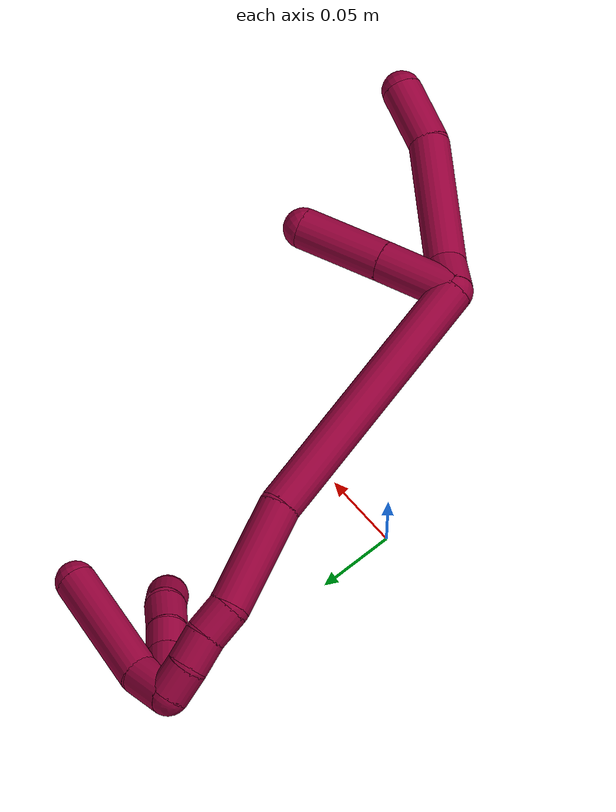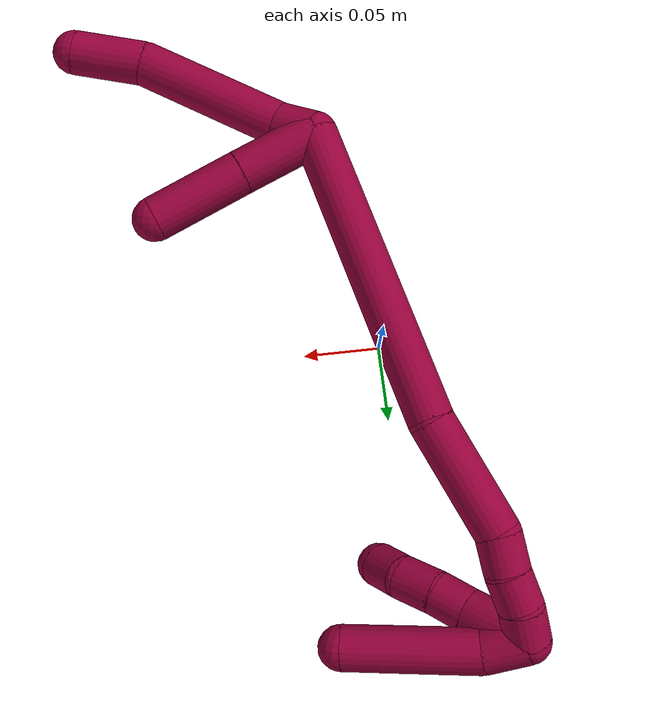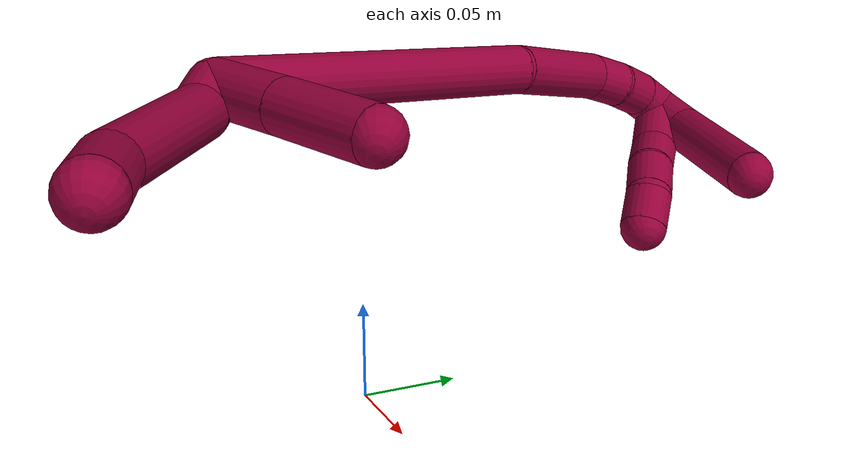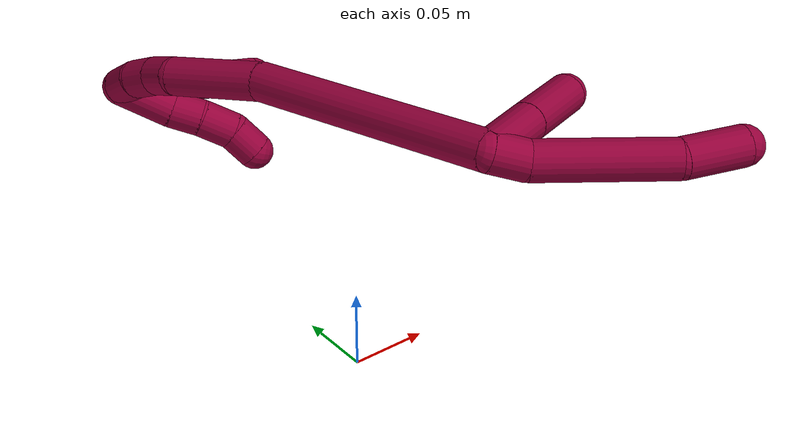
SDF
<sdf version="1.7">
 <world name="default">
  <model name="8">
   <static>0</static>
   <link name="8">
    <collision name="collision-cylinder-e_1_2_8">
     <pose>7.7e-05 -0.002053 0.011378 0.178471 0.0067 0.000599</pose>
     <geometry><cylinder><radius>0.0125</radius><length>0.023124</length></cylinder></geometry>
     <surface>
      <friction><ode><mu>1.16</mu><mu2>1.16</mu2><slip1>0</slip1><slip2>0</slip2></ode></friction>
      <contact><ode><kp>1e+06</kp><kd>1</kd><max_vel>0</max_vel><min_depth>0.001</min_depth></ode></contact>
     </surface>
    </collision>
    <visual name="visual-cylinder-e_1_2_8">
     <pose>7.7e-05 -0.002053 0.011378 0.178471 0.0067 0.000599</pose>
     <geometry><cylinder><radius>0.0125</radius><length>0.023124</length></cylinder></geometry>
     <material><ambient>0.584314 0 0.227451 1</ambient></material>
    </visual>
    <collision name="collision-cylinder-e_2_8_9">
     <pose>-0.010251 -0.017585 0.062359 0.328078 -0.243791 -0.040549</pose>
     <geometry><cylinder><radius>0.0125</radius><length>0.086216</length></cylinder></geometry>
     <surface>
      <friction><ode><mu>1.16</mu><mu2>1.16</mu2><slip1>0</slip1><slip2>0</slip2></ode></friction>
      <contact><ode><kp>1e+06</kp><kd>1</kd><max_vel>0</max_vel><min_depth>0.001</min_depth></ode></contact>
     </surface>
    </collision>
    <visual name="visual-cylinder-e_2_8_9">
     <pose>-0.010251 -0.017585 0.062359 0.328078 -0.243791 -0.040549</pose>
     <geometry><cylinder><radius>0.0125</radius><length>0.086216</length></cylinder></geometry>
     <material><ambient>0.584314 0 0.227451 1</ambient></material>
    </visual>
    <collision name="collision-cylinder-e_3_9_6">
     <pose>-0.028281 -0.031886 0.120789 0.043624 -0.384465 -0.008492</pose>
     <geometry><cylinder><radius>0.0125</radius><length>0.040659</length></cylinder></geometry>
     <surface>
      <friction><ode><mu>1.16</mu><mu2>1.16</mu2><slip1>0</slip1><slip2>0</slip2></ode></friction>
      <contact><ode><kp>1e+06</kp><kd>1</kd><max_vel>0</max_vel><min_depth>0.001</min_depth></ode></contact>
     </surface>
    </collision>
    <visual name="visual-cylinder-e_3_9_6">
     <pose>-0.028281 -0.031886 0.120789 0.043624 -0.384465 -0.008492</pose>
     <geometry><cylinder><radius>0.0125</radius><length>0.040659</length></cylinder></geometry>
     <material><ambient>0.584314 0 0.227451 1</ambient></material>
    </visual>
    <collision name="collision-cylinder-e_1_2_10">
     <pose>-0.0095 0.013477 0.016422 -0.687223 -0.42053 0.152429</pose>
     <geometry><cylinder><radius>0.0125</radius><length>0.046543</length></cylinder></geometry>
     <surface>
      <friction><ode><mu>1.16</mu><mu2>1.16</mu2><slip1>0</slip1><slip2>0</slip2></ode></friction>
      <contact><ode><kp>1e+06</kp><kd>1</kd><max_vel>0</max_vel><min_depth>0.001</min_depth></ode></contact>
     </surface>
    </collision>
    <visual name="visual-cylinder-e_1_2_10">
     <pose>-0.0095 0.013477 0.016422 -0.687223 -0.42053 0.152429</pose>
     <geometry><cylinder><radius>0.0125</radius><length>0.046543</length></cylinder></geometry>
     <material><ambient>0.584314 0 0.227451 1</ambient></material>
    </visual>
    <collision name="collision-cylinder-e_2_10_5">
     <pose>-0.029497 0.042658 0.051755 -0.693008 -0.403545 0.147451</pose>
     <geometry><cylinder><radius>0.0125</radius><length>0.053457</length></cylinder></geometry>
     <surface>
      <friction><ode><mu>1.16</mu><mu2>1.16</mu2><slip1>0</slip1><slip2>0</slip2></ode></friction>
      <contact><ode><kp>1e+06</kp><kd>1</kd><max_vel>0</max_vel><min_depth>0.001</min_depth></ode></contact>
     </surface>
    </collision>
    <visual name="visual-cylinder-e_2_10_5">
     <pose>-0.029497 0.042658 0.051755 -0.693008 -0.403545 0.147451</pose>
     <geometry><cylinder><radius>0.0125</radius><length>0.053457</length></cylinder></geometry>
     <material><ambient>0.584314 0 0.227451 1</ambient></material>
    </visual>
    <collision name="collision-cylinder-e_1_2_11">
     <pose>-0.001539 0.073541 -0.044149 -2.11146 -0.017936 0.031685</pose>
     <geometry><cylinder><radius>0.0125</radius><length>0.171579</length></cylinder></geometry>
     <surface>
      <friction><ode><mu>1.16</mu><mu2>1.16</mu2><slip1>0</slip1><slip2>0</slip2></ode></friction>
      <contact><ode><kp>1e+06</kp><kd>1</kd><max_vel>0</max_vel><min_depth>0.001</min_depth></ode></contact>
     </surface>
    </collision>
    <visual name="visual-cylinder-e_1_2_11">
     <pose>-0.001539 0.073541 -0.044149 -2.11146 -0.017936 0.031685</pose>
     <geometry><cylinder><radius>0.0125</radius><length>0.171579</length></cylinder></geometry>
     <material><ambient>0.584314 0 0.227451 1</ambient></material>
    </visual>
    <collision name="collision-cylinder-e_2_11_12">
     <pose>0.002504 0.173374 -0.108148 -2.2175 0.16784 -0.33466</pose>
     <geometry><cylinder><radius>0.0125</radius><length>0.066825</length></cylinder></geometry>
     <surface>
      <friction><ode><mu>1.16</mu><mu2>1.16</mu2><slip1>0</slip1><slip2>0</slip2></ode></friction>
      <contact><ode><kp>1e+06</kp><kd>1</kd><max_vel>0</max_vel><min_depth>0.001</min_depth></ode></contact>
     </surface>
    </collision>
    <visual name="visual-cylinder-e_2_11_12">
     <pose>0.002504 0.173374 -0.108148 -2.2175 0.16784 -0.33466</pose>
     <geometry><cylinder><radius>0.0125</radius><length>0.066825</length></cylinder></geometry>
     <material><ambient>0.584314 0 0.227451 1</ambient></material>
    </visual>
    <collision name="collision-cylinder-e_3_12_13">
     <pose>0.009808 0.209466 -0.131365 -1.90163 0.164652 -0.230145</pose>
     <geometry><cylinder><radius>0.0125</radius><length>0.02101</length></cylinder></geometry>
     <surface>
      <friction><ode><mu>1.16</mu><mu2>1.16</mu2><slip1>0</slip1><slip2>0</slip2></ode></friction>
      <contact><ode><kp>1e+06</kp><kd>1</kd><max_vel>0</max_vel><min_depth>0.001</min_depth></ode></contact>
     </surface>
    </collision>
    <visual name="visual-cylinder-e_3_12_13">
     <pose>0.009808 0.209466 -0.131365 -1.90163 0.164652 -0.230145</pose>
     <geometry><cylinder><radius>0.0125</radius><length>0.02101</length></cylinder></geometry>
     <material><ambient>0.584314 0 0.227451 1</ambient></material>
    </visual>
    <collision name="collision-cylinder-e_4_13_14">
     <pose>0.014555 0.228091 -0.138751 -1.99825 0.302445 -0.465169</pose>
     <geometry><cylinder><radius>0.0125</radius><length>0.020315</length></cylinder></geometry>
     <surface>
      <friction><ode><mu>1.16</mu><mu2>1.16</mu2><slip1>0</slip1><slip2>0</slip2></ode></friction>
      <contact><ode><kp>1e+06</kp><kd>1</kd><max_vel>0</max_vel><min_depth>0.001</min_depth></ode></contact>
     </surface>
    </collision>
    <visual name="visual-cylinder-e_4_13_14">
     <pose>0.014555 0.228091 -0.138751 -1.99825 0.302445 -0.465169</pose>
     <geometry><cylinder><radius>0.0125</radius><length>0.020315</length></cylinder></geometry>
     <material><ambient>0.584314 0 0.227451 1</ambient></material>
    </visual>
    <collision name="collision-cylinder-e_5_14_1">
     <pose>0.021644 0.245962 -0.144858 -1.7976 0.4125 -0.514367</pose>
     <geometry><cylinder><radius>0.0125</radius><length>0.020271</length></cylinder></geometry>
     <surface>
      <friction><ode><mu>1.16</mu><mu2>1.16</mu2><slip1>0</slip1><slip2>0</slip2></ode></friction>
      <contact><ode><kp>1e+06</kp><kd>1</kd><max_vel>0</max_vel><min_depth>0.001</min_depth></ode></contact>
     </surface>
    </collision>
    <visual name="visual-cylinder-e_5_14_1">
     <pose>0.021644 0.245962 -0.144858 -1.7976 0.4125 -0.514367</pose>
     <geometry><cylinder><radius>0.0125</radius><length>0.020271</length></cylinder></geometry>
     <material><ambient>0.584314 0 0.227451 1</ambient></material>
    </visual>
    <collision name="collision-cylinder-e_1_1_15">
     <pose>0.029344 0.251443 -0.129434 0.200942 0.200767 0.020307</pose>
     <geometry><cylinder><radius>0.0125</radius><length>0.036476</length></cylinder></geometry>
     <surface>
      <friction><ode><mu>1.16</mu><mu2>1.16</mu2><slip1>0</slip1><slip2>0</slip2></ode></friction>
      <contact><ode><kp>1e+06</kp><kd>1</kd><max_vel>0</max_vel><min_depth>0.001</min_depth></ode></contact>
     </surface>
    </collision>
    <visual name="visual-cylinder-e_1_1_15">
     <pose>0.029344 0.251443 -0.129434 0.200942 0.200767 0.020307</pose>
     <geometry><cylinder><radius>0.0125</radius><length>0.036476</length></cylinder></geometry>
     <material><ambient>0.584314 0 0.227451 1</ambient></material>
    </visual>
    <collision name="collision-cylinder-e_2_15_16">
     <pose>0.033617 0.24506 -0.102212 0.28229 0.062813 0.008928</pose>
     <geometry><cylinder><radius>0.0125</radius><length>0.020259</length></cylinder></geometry>
     <surface>
      <friction><ode><mu>1.16</mu><mu2>1.16</mu2><slip1>0</slip1><slip2>0</slip2></ode></friction>
      <contact><ode><kp>1e+06</kp><kd>1</kd><max_vel>0</max_vel><min_depth>0.001</min_depth></ode></contact>
     </surface>
    </collision>
    <visual name="visual-cylinder-e_2_15_16">
     <pose>0.033617 0.24506 -0.102212 0.28229 0.062813 0.008928</pose>
     <geometry><cylinder><radius>0.0125</radius><length>0.020259</length></cylinder></geometry>
     <material><ambient>0.584314 0 0.227451 1</ambient></material>
    </visual>
    <collision name="collision-cylinder-e_3_16_17">
     <pose>0.036235 0.240314 -0.081316 0.170798 0.172843 0.014833</pose>
     <geometry><cylinder><radius>0.0125</radius><length>0.023049</length></cylinder></geometry>
     <surface>
      <friction><ode><mu>1.16</mu><mu2>1.16</mu2><slip1>0</slip1><slip2>0</slip2></ode></friction>
      <contact><ode><kp>1e+06</kp><kd>1</kd><max_vel>0</max_vel><min_depth>0.001</min_depth></ode></contact>
     </surface>
    </collision>
    <visual name="visual-cylinder-e_3_16_17">
     <pose>0.036235 0.240314 -0.081316 0.170798 0.172843 0.014833</pose>
     <geometry><cylinder><radius>0.0125</radius><length>0.023049</length></cylinder></geometry>
     <material><ambient>0.584314 0 0.227451 1</ambient></material>
    </visual>
    <collision name="collision-cylinder-e_4_17_4">
     <pose>0.043172 0.237257 -0.06139 0.128258 0.512277 0.033633</pose>
     <geometry><cylinder><radius>0.0125</radius><length>0.020216</length></cylinder></geometry>
     <surface>
      <friction><ode><mu>1.16</mu><mu2>1.16</mu2><slip1>0</slip1><slip2>0</slip2></ode></friction>
      <contact><ode><kp>1e+06</kp><kd>1</kd><max_vel>0</max_vel><min_depth>0.001</min_depth></ode></contact>
     </surface>
    </collision>
    <visual name="visual-cylinder-e_4_17_4">
     <pose>0.043172 0.237257 -0.06139 0.128258 0.512277 0.033633</pose>
     <geometry><cylinder><radius>0.0125</radius><length>0.020216</length></cylinder></geometry>
     <material><ambient>0.584314 0 0.227451 1</ambient></material>
    </visual>
    <collision name="collision-cylinder-e_1_1_18">
     <pose>0.023826 0.259996 -0.135772 -0.419704 -0.152583 0.032559</pose>
     <geometry><cylinder><radius>0.0125</radius><length>0.02476</length></cylinder></geometry>
     <surface>
      <friction><ode><mu>1.16</mu><mu2>1.16</mu2><slip1>0</slip1><slip2>0</slip2></ode></friction>
      <contact><ode><kp>1e+06</kp><kd>1</kd><max_vel>0</max_vel><min_depth>0.001</min_depth></ode></contact>
     </surface>
    </collision>
    <visual name="visual-cylinder-e_1_1_18">
     <pose>0.023826 0.259996 -0.135772 -0.419704 -0.152583 0.032559</pose>
     <geometry><cylinder><radius>0.0125</radius><length>0.02476</length></cylinder></geometry>
     <material><ambient>0.584314 0 0.227451 1</ambient></material>
    </visual>
    <collision name="collision-cylinder-e_2_18_3">
     <pose>0.011211 0.270006 -0.088893 -0.139791 -0.289311 0.020396</pose>
     <geometry><cylinder><radius>0.0125</radius><length>0.07524</length></cylinder></geometry>
     <surface>
      <friction><ode><mu>1.16</mu><mu2>1.16</mu2><slip1>0</slip1><slip2>0</slip2></ode></friction>
      <contact><ode><kp>1e+06</kp><kd>1</kd><max_vel>0</max_vel><min_depth>0.001</min_depth></ode></contact>
     </surface>
    </collision>
    <visual name="visual-cylinder-e_2_18_3">
     <pose>0.011211 0.270006 -0.088893 -0.139791 -0.289311 0.020396</pose>
     <geometry><cylinder><radius>0.0125</radius><length>0.07524</length></cylinder></geometry>
     <material><ambient>0.584314 0 0.227451 1</ambient></material>
    </visual>
    <collision name="collision-sphere-3">
     <pose>0.000479 0.27503 -0.053188 0 -0 0</pose>
     <geometry><sphere><radius>0.0125</radius></sphere></geometry>
     <surface>
      <friction><ode><mu>1.16</mu><mu2>1.16</mu2><slip1>0</slip1><slip2>0</slip2></ode></friction>
      <contact><ode><kp>1e+06</kp><kd>1</kd><max_vel>0</max_vel><min_depth>0.001</min_depth></ode></contact>
     </surface>
    </collision>
    <visual name="visual-sphere-3">
     <pose>0.000479 0.27503 -0.053188 0 -0 0</pose>
     <geometry><sphere><radius>0.0125</radius></sphere></geometry>
     <material><ambient>0.584314 0 0.227451 1</ambient></material>
    </visual>
    <collision name="collision-sphere-5">
     <pose>-0.039992 0.058362 0.070666 0 -0 0</pose>
     <geometry><sphere><radius>0.0125</radius></sphere></geometry>
     <surface>
      <friction><ode><mu>1.16</mu><mu2>1.16</mu2><slip1>0</slip1><slip2>0</slip2></ode></friction>
      <contact><ode><kp>1e+06</kp><kd>1</kd><max_vel>0</max_vel><min_depth>0.001</min_depth></ode></contact>
     </surface>
    </collision>
    <visual name="visual-sphere-5">
     <pose>-0.039992 0.058362 0.070666 0 -0 0</pose>
     <geometry><sphere><radius>0.0125</radius></sphere></geometry>
     <material><ambient>0.584314 0 0.227451 1</ambient></material>
    </visual>
    <collision name="collision-sphere-10">
     <pose>-0.019001 0.026954 0.032843 0 -0 0</pose>
     <geometry><sphere><radius>0.0125</radius></sphere></geometry>
     <surface>
      <friction><ode><mu>1.16</mu><mu2>1.16</mu2><slip1>0</slip1><slip2>0</slip2></ode></friction>
      <contact><ode><kp>1e+06</kp><kd>1</kd><max_vel>0</max_vel><min_depth>0.001</min_depth></ode></contact>
     </surface>
    </collision>
    <visual name="visual-sphere-10">
     <pose>-0.019001 0.026954 0.032843 0 -0 0</pose>
     <geometry><sphere><radius>0.0125</radius></sphere></geometry>
     <material><ambient>0.584314 0 0.227451 1</ambient></material>
    </visual>
    <collision name="collision-sphere-6">
     <pose>-0.035906 -0.032708 0.139616 0 -0 0</pose>
     <geometry><sphere><radius>0.0125</radius></sphere></geometry>
     <surface>
      <friction><ode><mu>1.16</mu><mu2>1.16</mu2><slip1>0</slip1><slip2>0</slip2></ode></friction>
      <contact><ode><kp>1e+06</kp><kd>1</kd><max_vel>0</max_vel><min_depth>0.001</min_depth></ode></contact>
     </surface>
    </collision>
    <visual name="visual-sphere-6">
     <pose>-0.035906 -0.032708 0.139616 0 -0 0</pose>
     <geometry><sphere><radius>0.0125</radius></sphere></geometry>
     <material><ambient>0.584314 0 0.227451 1</ambient></material>
    </visual>
    <collision name="collision-sphere-9">
     <pose>-0.020656 -0.031065 0.101961 0 -0 0</pose>
     <geometry><sphere><radius>0.0125</radius></sphere></geometry>
     <surface>
      <friction><ode><mu>1.16</mu><mu2>1.16</mu2><slip1>0</slip1><slip2>0</slip2></ode></friction>
      <contact><ode><kp>1e+06</kp><kd>1</kd><max_vel>0</max_vel><min_depth>0.001</min_depth></ode></contact>
     </surface>
    </collision>
    <visual name="visual-sphere-9">
     <pose>-0.020656 -0.031065 0.101961 0 -0 0</pose>
     <geometry><sphere><radius>0.0125</radius></sphere></geometry>
     <material><ambient>0.584314 0 0.227451 1</ambient></material>
    </visual>
    <collision name="collision-sphere-2">
     <geometry><sphere><radius>0.0125</radius></sphere></geometry>
     <surface>
      <friction><ode><mu>1.16</mu><mu2>1.16</mu2><slip1>0</slip1><slip2>0</slip2></ode></friction>
      <contact><ode><kp>1e+06</kp><kd>1</kd><max_vel>0</max_vel><min_depth>0.001</min_depth></ode></contact>
     </surface>
    </collision>
    <visual name="visual-sphere-2">
     <geometry><sphere><radius>0.0125</radius></sphere></geometry>
     <material><ambient>0.584314 0 0.227451 1</ambient></material>
    </visual>
    <collision name="collision-sphere-8">
     <pose>0.000155 -0.004105 0.022757 0 -0 0</pose>
     <geometry><sphere><radius>0.0125</radius></sphere></geometry>
     <surface>
      <friction><ode><mu>1.16</mu><mu2>1.16</mu2><slip1>0</slip1><slip2>0</slip2></ode></friction>
      <contact><ode><kp>1e+06</kp><kd>1</kd><max_vel>0</max_vel><min_depth>0.001</min_depth></ode></contact>
     </surface>
    </collision>
    <visual name="visual-sphere-8">
     <pose>0.000155 -0.004105 0.022757 0 -0 0</pose>
     <geometry><sphere><radius>0.0125</radius></sphere></geometry>
     <material><ambient>0.584314 0 0.227451 1</ambient></material>
    </visual>
    <collision name="collision-sphere-11">
     <pose>-0.003077 0.147083 -0.088298 0 -0 0</pose>
     <geometry><sphere><radius>0.0125</radius></sphere></geometry>
     <surface>
      <friction><ode><mu>1.16</mu><mu2>1.16</mu2><slip1>0</slip1><slip2>0</slip2></ode></friction>
      <contact><ode><kp>1e+06</kp><kd>1</kd><max_vel>0</max_vel><min_depth>0.001</min_depth></ode></contact>
     </surface>
    </collision>
    <visual name="visual-sphere-11">
     <pose>-0.003077 0.147083 -0.088298 0 -0 0</pose>
     <geometry><sphere><radius>0.0125</radius></sphere></geometry>
     <material><ambient>0.584314 0 0.227451 1</ambient></material>
    </visual>
    <collision name="collision-sphere-12">
     <pose>0.008086 0.199665 -0.127998 0 -0 0</pose>
     <geometry><sphere><radius>0.0125</radius></sphere></geometry>
     <surface>
      <friction><ode><mu>1.16</mu><mu2>1.16</mu2><slip1>0</slip1><slip2>0</slip2></ode></friction>
      <contact><ode><kp>1e+06</kp><kd>1</kd><max_vel>0</max_vel><min_depth>0.001</min_depth></ode></contact>
     </surface>
    </collision>
    <visual name="visual-sphere-12">
     <pose>0.008086 0.199665 -0.127998 0 -0 0</pose>
     <geometry><sphere><radius>0.0125</radius></sphere></geometry>
     <material><ambient>0.584314 0 0.227451 1</ambient></material>
    </visual>
    <collision name="collision-sphere-13">
     <pose>0.01153 0.219267 -0.134731 0 -0 0</pose>
     <geometry><sphere><radius>0.0125</radius></sphere></geometry>
     <surface>
      <friction><ode><mu>1.16</mu><mu2>1.16</mu2><slip1>0</slip1><slip2>0</slip2></ode></friction>
      <contact><ode><kp>1e+06</kp><kd>1</kd><max_vel>0</max_vel><min_depth>0.001</min_depth></ode></contact>
     </surface>
    </collision>
    <visual name="visual-sphere-13">
     <pose>0.01153 0.219267 -0.134731 0 -0 0</pose>
     <geometry><sphere><radius>0.0125</radius></sphere></geometry>
     <material><ambient>0.584314 0 0.227451 1</ambient></material>
    </visual>
    <collision name="collision-sphere-14">
     <pose>0.017581 0.236915 -0.14277 0 -0 0</pose>
     <geometry><sphere><radius>0.0125</radius></sphere></geometry>
     <surface>
      <friction><ode><mu>1.16</mu><mu2>1.16</mu2><slip1>0</slip1><slip2>0</slip2></ode></friction>
      <contact><ode><kp>1e+06</kp><kd>1</kd><max_vel>0</max_vel><min_depth>0.001</min_depth></ode></contact>
     </surface>
    </collision>
    <visual name="visual-sphere-14">
     <pose>0.017581 0.236915 -0.14277 0 -0 0</pose>
     <geometry><sphere><radius>0.0125</radius></sphere></geometry>
     <material><ambient>0.584314 0 0.227451 1</ambient></material>
    </visual>
    <collision name="collision-sphere-1">
     <pose>0.025707 0.25501 -0.146946 0 -0 0</pose>
     <geometry><sphere><radius>0.0125</radius></sphere></geometry>
     <surface>
      <friction><ode><mu>1.16</mu><mu2>1.16</mu2><slip1>0</slip1><slip2>0</slip2></ode></friction>
      <contact><ode><kp>1e+06</kp><kd>1</kd><max_vel>0</max_vel><min_depth>0.001</min_depth></ode></contact>
     </surface>
    </collision>
    <visual name="visual-sphere-1">
     <pose>0.025707 0.25501 -0.146946 0 -0 0</pose>
     <geometry><sphere><radius>0.0125</radius></sphere></geometry>
     <material><ambient>0.584314 0 0.227451 1</ambient></material>
    </visual>
    <collision name="collision-sphere-18">
     <pose>0.021944 0.264982 -0.124598 0 -0 0</pose>
     <geometry><sphere><radius>0.0125</radius></sphere></geometry>
     <surface>
      <friction><ode><mu>1.16</mu><mu2>1.16</mu2><slip1>0</slip1><slip2>0</slip2></ode></friction>
      <contact><ode><kp>1e+06</kp><kd>1</kd><max_vel>0</max_vel><min_depth>0.001</min_depth></ode></contact>
     </surface>
    </collision>
    <visual name="visual-sphere-18">
     <pose>0.021944 0.264982 -0.124598 0 -0 0</pose>
     <geometry><sphere><radius>0.0125</radius></sphere></geometry>
     <material><ambient>0.584314 0 0.227451 1</ambient></material>
    </visual>
    <collision name="collision-sphere-15">
     <pose>0.032981 0.247876 -0.111922 0 -0 0</pose>
     <geometry><sphere><radius>0.0125</radius></sphere></geometry>
     <surface>
      <friction><ode><mu>1.16</mu><mu2>1.16</mu2><slip1>0</slip1><slip2>0</slip2></ode></friction>
      <contact><ode><kp>1e+06</kp><kd>1</kd><max_vel>0</max_vel><min_depth>0.001</min_depth></ode></contact>
     </surface>
    </collision>
    <visual name="visual-sphere-15">
     <pose>0.032981 0.247876 -0.111922 0 -0 0</pose>
     <geometry><sphere><radius>0.0125</radius></sphere></geometry>
     <material><ambient>0.584314 0 0.227451 1</ambient></material>
    </visual>
    <collision name="collision-sphere-16">
     <pose>0.034253 0.242243 -0.092503 0 -0 0</pose>
     <geometry><sphere><radius>0.0125</radius></sphere></geometry>
     <surface>
      <friction><ode><mu>1.16</mu><mu2>1.16</mu2><slip1>0</slip1><slip2>0</slip2></ode></friction>
      <contact><ode><kp>1e+06</kp><kd>1</kd><max_vel>0</max_vel><min_depth>0.001</min_depth></ode></contact>
     </surface>
    </collision>
    <visual name="visual-sphere-16">
     <pose>0.034253 0.242243 -0.092503 0 -0 0</pose>
     <geometry><sphere><radius>0.0125</radius></sphere></geometry>
     <material><ambient>0.584314 0 0.227451 1</ambient></material>
    </visual>
    <collision name="collision-sphere-17">
     <pose>0.038217 0.238384 -0.070128 0 -0 0</pose>
     <geometry><sphere><radius>0.0125</radius></sphere></geometry>
     <surface>
      <friction><ode><mu>1.16</mu><mu2>1.16</mu2><slip1>0</slip1><slip2>0</slip2></ode></friction>
      <contact><ode><kp>1e+06</kp><kd>1</kd><max_vel>0</max_vel><min_depth>0.001</min_depth></ode></contact>
     </surface>
    </collision>
    <visual name="visual-sphere-17">
     <pose>0.038217 0.238384 -0.070128 0 -0 0</pose>
     <geometry><sphere><radius>0.0125</radius></sphere></geometry>
     <material><ambient>0.584314 0 0.227451 1</ambient></material>
    </visual>
    <collision name="collision-sphere-4">
     <pose>0.048126 0.23613 -0.052652 0 -0 0</pose>
     <geometry><sphere><radius>0.0125</radius></sphere></geometry>
     <surface>
      <friction><ode><mu>1.16</mu><mu2>1.16</mu2><slip1>0</slip1><slip2>0</slip2></ode></friction>
      <contact><ode><kp>1e+06</kp><kd>1</kd><max_vel>0</max_vel><min_depth>0.001</min_depth></ode></contact>
     </surface>
    </collision>
    <visual name="visual-sphere-4">
     <pose>0.048126 0.23613 -0.052652 0 -0 0</pose>
     <geometry><sphere><radius>0.0125</radius></sphere></geometry>
     <material><ambient>0.584314 0 0.227451 1</ambient></material>
    </visual>
    <inertial>
     <pose>0.002248 0.119328 -0.038924 0 -0 0</pose>
     <mass>0.75</mass>
     <inertia>
      <ixx>0.000593</ixx>
      <ixy>0</ixy>
      <ixz>0</ixz>
      <iyy>-7.5e-05</iyy>
      <iyz>0</iyz>
      <izz>-0.000336</izz>
     </inertia>
    </inertial>
   </link>
   <pose>0.036513 -0.077442 0.171951 -2.45256 1.08528 -2.76144</pose>
  </model>
 </world>
</sdf>
